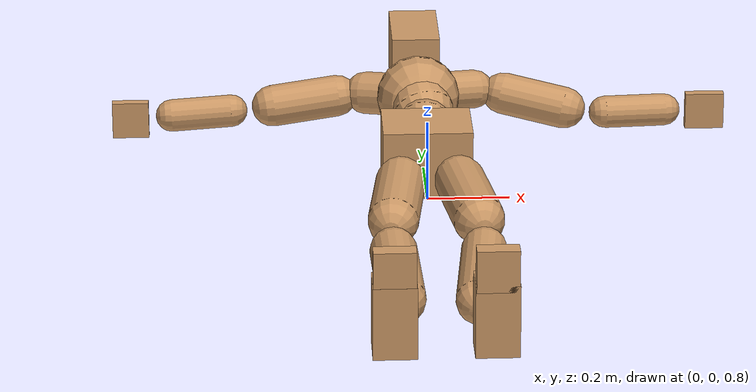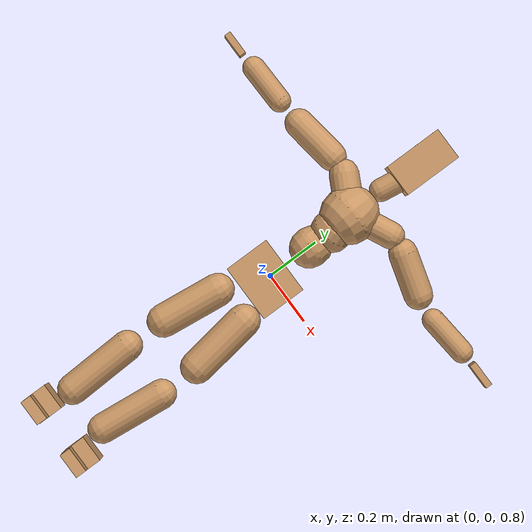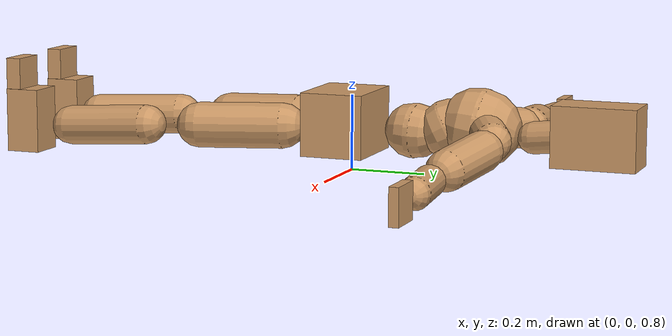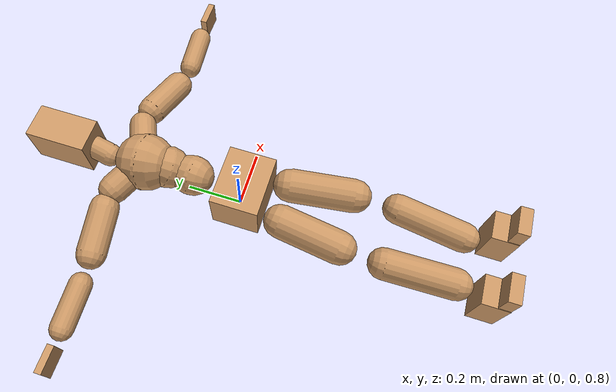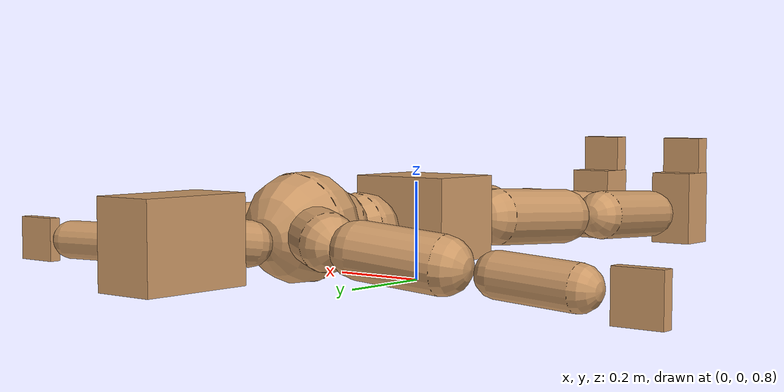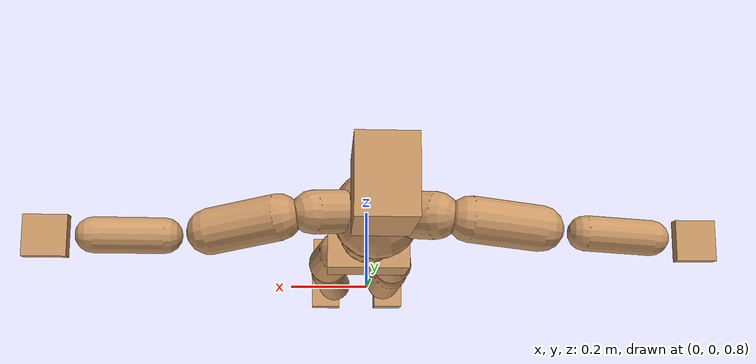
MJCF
<mujoco model="humanoid">
  <compiler coordinate="local"/>
  <default>
    <joint damping="0.0" armature="0.01" stiffness="0.0" limited="true"/>
    <geom conaffinity="1" condim="3" contype="7" margin="0.001" rgba="0.8 0.6 .4 1"/>
  </default>
  <worldbody>
    <light cutoff="100" diffuse="1 1 1" dir="-0 0 -1.3" directional="true" exponent="1" pos="0 0 1.3" specular=".1 .1 .1"/>
    <camera name="back" pos="0 3 1.4" xyaxes="-1 0 0 0 -1 2" mode="trackcom"/>
    <camera name="side" pos="-3 0 1.4" xyaxes="0 -1 0 1 0 2" mode="trackcom"/>
    <camera name="front_side" pos="-2 -2 0.5" xyaxes="0.5 -0.5 0 0.1 0.1 1"  mode="trackcom"/>
    <body name="Pelvis" pos="0 0 0.946" quat="1 0 0 0">
      <geom type="box" pos="-0.0031 -0.0215 -0.0168" size="0.1079 0.0846 0.084" quat="1.0000 0.0000 0.0000 0.0000" density="3021.964159" name="Pelvis"/>
      <body name="L_Hip" pos="0.0582 -0.0928 -0.026">
        <joint name="L_Hip_x" type="hinge" pos="0 0 0" axis="1 0 0" user="250 2.5 1 500 10 2" armature="0.01" range="-180.0000 180.0000" damping="0" stiffness="0"/>
        <joint name="L_Hip_y" type="hinge" pos="0 0 0" axis="0 1 0" user="250 2.5 1 500 10 2" armature="0.01" range="-180.0000 180.0000" damping="0" stiffness="0"/>
        <joint name="L_Hip_z" type="hinge" pos="0 0 0" axis="0 0 1" user="250 2.5 1 500 10 2" armature="0.01" range="-180.0000 180.0000" damping="0" stiffness="0"/>
        <geom type="capsule" contype="1" conaffinity="1" density="2040.816327" fromto="0.0109 -0.0758 -0.0019 0.0438 -0.3030 -0.0075" size="0.0605" name="L_Hip"/>
        <body name="L_Knee" pos="0.0547 -0.3788 -0.0094">
          <joint name="L_Knee_x" type="hinge" pos="0 0 0" axis="1 0 0" user="250 2.5 1 500 10 2" armature="0.01" range="-180.0000 180.0000" damping="0" stiffness="0"/>
          <joint name="L_Knee_y" type="hinge" pos="0 0 0" axis="0 1 0" user="250 2.5 1 500 10 2" armature="0.01" range="-180.0000 180.0000" damping="0" stiffness="0"/>
          <joint name="L_Knee_z" type="hinge" pos="0 0 0" axis="0 0 1" user="250 2.5 1 500 10 2" armature="0.01" range="-180.0000 180.0000" damping="0" stiffness="0"/>
          <geom type="capsule" contype="1" conaffinity="1" density="1234.567901" fromto="-0.0087 -0.0806 -0.0064 -0.0348 -0.3224 -0.0255" size="0.0533" name="L_Knee"/>
          <body name="L_Ankle" pos="-0.0435 -0.4031 -0.0319">
            <joint name="L_Ankle_x" type="hinge" pos="0 0 0" axis="1 0 0" user="150 2.5 1 500 10 2" armature="0.01" range="-180.0000 180.0000" damping="0" stiffness="0"/>
            <joint name="L_Ankle_y" type="hinge" pos="0 0 0" axis="0 1 0" user="150 2.5 1 500 10 2" armature="0.01" range="-180.0000 180.0000" damping="0" stiffness="0"/>
            <joint name="L_Ankle_z" type="hinge" pos="0 0 0" axis="0 0 1" user="150 2.5 1 500 10 2" armature="0.01" range="-180.0000 180.0000" damping="0" stiffness="0"/>
            <geom type="box" pos="0.0407 -0.0287 0.0232" size="0.0498 0.0464 0.0857" quat="1.0000 0.0000 0.0000 0.0000" density="445.819015" name="L_Ankle"/>
            <body name="L_Toe" pos="0.0473 -0.058 0.1182">
              <joint name="L_Toe_y" type="hinge" pos="0 0 0" axis="0 1 0" user="150 1 1 500 1 1" armature="0.01" range="-180.0000 180.0000" damping="0" stiffness="0"/>
              <geom type="box" pos="-0.0065 0.0034 0.0256" size="0.0478 0.0205 0.0495" quat="1.0000 0.0000 0.0000 0.0000" density="421.767577" name="L_Toe"/>
            </body>
          </body>
        </body>
      </body>
      <body name="R_Hip" pos="-0.0633 -0.1039 -0.0213">
        <joint name="R_Hip_x" type="hinge" pos="0 0 0" axis="1 0 0" user="250 2.5 1 500 10 2" armature="0.01" range="-180.0000 180.0000" damping="0" stiffness="0"/>
        <joint name="R_Hip_y" type="hinge" pos="0 0 0" axis="0 1 0" user="250 2.5 1 500 10 2" armature="0.01" range="-180.0000 180.0000" damping="0" stiffness="0"/>
        <joint name="R_Hip_z" type="hinge" pos="0 0 0" axis="0 0 1" user="250 2.5 1 500 10 2" armature="0.01" range="-180.0000 180.0000" damping="0" stiffness="0"/>
        <geom type="capsule" contype="1" conaffinity="1" density="2040.816327" fromto="-0.0088 -0.0725 -0.0034 -0.0354 -0.2899 -0.0135" size="0.0598" name="R_Hip"/>
        <body name="R_Knee" pos="-0.0442 -0.3624 -0.0168">
          <joint name="R_Knee_x" type="hinge" pos="0 0 0" axis="1 0 0" user="250 2.5 1 500 10 2" armature="0.01" range="-180.0000 180.0000" damping="0" stiffness="0"/>
          <joint name="R_Knee_y" type="hinge" pos="0 0 0" axis="0 1 0" user="250 2.5 1 500 10 2" armature="0.01" range="-180.0000 180.0000" damping="0" stiffness="0"/>
          <joint name="R_Knee_z" type="hinge" pos="0 0 0" axis="0 0 1" user="250 2.5 1 500 10 2" armature="0.01" range="-180.0000 180.0000" damping="0" stiffness="0"/>
          <geom type="capsule" contype="1" conaffinity="1" density="1234.567901" fromto="0.0031 -0.0821 -0.0040 0.0123 -0.3286 -0.0162" size="0.0551" name="R_Knee"/>
          <body name="R_Ankle" pos="0.0154 -0.4107 -0.0202">
            <joint name="R_Ankle_x" type="hinge" pos="0 0 0" axis="1 0 0" user="150 1 1 500 10 2" armature="0.01" range="-180.0000 180.0000" damping="0" stiffness="0"/>
            <joint name="R_Ankle_y" type="hinge" pos="0 0 0" axis="0 1 0" user="150 1 1 500 10 2" armature="0.01" range="-180.0000 180.0000" damping="0" stiffness="0"/>
            <joint name="R_Ankle_z" type="hinge" pos="0 0 0" axis="0 0 1" user="150 1 1 500 10 2" armature="0.01" range="-180.0000 180.0000" damping="0" stiffness="0"/>
            <geom type="box" pos="-0.0243 -0.0263 0.0142" size="0.0498 0.0464 0.0857" quat="1.0000 0.0000 0.0000 0.0000" density="445.807856" name="R_Ankle"/>
            <body name="R_Toe" pos="-0.0388 -0.0583 0.119">
              <joint name="R_Toe_y" type="hinge" pos="0 0 0" axis="0 1 0" user="150 1 1 500 1 1" armature="0.01" range="-180.0000 180.0000" damping="0" stiffness="0"/>
              <geom type="box" pos="0.0145 0.0062 0.0158" size="0.0478 0.0205 0.0495" quat="1.0000 0.0000 0.0000 0.0000" density="421.7641" name="R_Toe"/>
            </body>
          </body>
        </body>
      </body>
      <body name="Torso" pos="-0.0028 0.1099 -0.0276">
        <joint name="Torso_x" type="hinge" pos="0 0 0" axis="1 0 0" user="500 5 1 500 10 2" armature="0.01" range="-180.0000 180.0000" damping="0" stiffness="0"/>
        <joint name="Torso_y" type="hinge" pos="0 0 0" axis="0 1 0" user="500 5 1 500 10 2" armature="0.01" range="-180.0000 180.0000" damping="0" stiffness="0"/>
        <joint name="Torso_z" type="hinge" pos="0 0 0" axis="0 0 1" user="500 5 1 500 10 2" armature="0.01" range="-180.0000 180.0000" damping="0" stiffness="0"/>
        <geom type="capsule" contype="1" conaffinity="1" density="2040.816327" fromto="0.0043 0.0593 -0.0027 0.0052 0.0725 -0.0033" size="0.0719" name="Torso"/>
        <body name="Spine" pos="0.0094 0.1319 -0.0059">
          <joint name="Spine_x" type="hinge" pos="0 0 0" axis="1 0 0" user="500 5 1 500 10 2" armature="0.01" range="-180.0000 180.0000" damping="0" stiffness="0"/>
          <joint name="Spine_y" type="hinge" pos="0 0 0" axis="0 1 0" user="500 5 1 500 10 2" armature="0.01" range="-180.0000 180.0000" damping="0" stiffness="0"/>
          <joint name="Spine_z" type="hinge" pos="0 0 0" axis="0 0 1" user="500 5 1 500 10 2" armature="0.01" range="-180.0000 180.0000" damping="0" stiffness="0"/>
          <geom type="capsule" contype="1" conaffinity="1" density="2040.816327" fromto="-0.0051 0.0235 0.0128 -0.0062 0.0287 0.0156" size="0.076" name="Spine"/>
          <body name="Chest" pos="-0.0113 0.0522 0.0284">
            <joint name="Chest_x" type="hinge" pos="0 0 0" axis="1 0 0" user="500 5 1 500 10 2" armature="0.01" range="-180.0000 180.0000" damping="0" stiffness="0"/>
            <joint name="Chest_y" type="hinge" pos="0 0 0" axis="0 1 0" user="500 5 1 500 10 2" armature="0.01" range="-180.0000 180.0000" damping="0" stiffness="0"/>
            <joint name="Chest_z" type="hinge" pos="0 0 0" axis="0 0 1" user="500 5 1 500 10 2" armature="0.01" range="-180.0000 180.0000" damping="0" stiffness="0"/>
            <geom type="capsule" contype="1" conaffinity="1" density="2040.816327" fromto="-0.0020 0.0502 -0.0078 -0.0025 0.0613 -0.0096" size="0.1028" name="Chest"/>
            <body name="Neck" pos="-0.0122 0.1652 -0.0316">
              <joint name="Neck_y" type="hinge" pos="0 0 0" axis="0 1 0" user="150 1 1 250 50 4" armature="0.01" range="-180.0000 180.0000" damping="0" stiffness="0"/>
              <joint name="Neck_z" type="hinge" pos="0 0 0" axis="0 0 1" user="150 1 1 250 50 4" armature="0.01" range="-180.0000 180.0000" damping="0" stiffness="0"/>
              <geom type="capsule" contype="1" conaffinity="1" density="1000" fromto="0.0050 0.0321 0.0041 0.0198 0.1284 0.0166" size="0.0419" name="Neck"/>
              <body name="Head" pos="0.0248 0.1605 0.0207">
                <camera name="egocentric" pos="0 0 0.09" xyaxes="+1 0 0 0 -1 -0.1" fovy="80"/>
                <geom type="box" pos="-0.0111 0.0414 -0.0008" size="0.0609 0.1096 0.0797" quat="1.0000 0.0000 0.0000 0.0000" density="1018.531753" name="Head"/>
              </body>
            </body>
            <body name="L_Thorax" pos="0.0464 0.0849 -0.0072">
              <joint name="L_Thorax_x" type="hinge" pos="0 0 0" axis="1 0 0" user="200 2 1 500 50 4" armature="0.01" range="-180.0000 180.0000" damping="0" stiffness="0"/>
              <joint name="L_Thorax_z" type="hinge" pos="0 0 0" axis="0 0 1" user="200 2 1 500 50 4" armature="0.01" range="-180.0000 180.0000" damping="0" stiffness="0"/>
              <geom type="capsule" contype="1" conaffinity="1" density="1000" fromto="0.0238 0.0115 -0.0031 0.0954 0.0462 -0.0124" size="0.0488" name="L_Thorax"/>
              <body name="L_Shoulder" pos="0.1192 0.0577 -0.0155">
                <joint name="L_Shoulder_x" type="hinge" pos="0 0 0" axis="1 0 0" user="200 2 1 500 50 4" armature="0.01" range="-180.0000 180.0000" damping="0" stiffness="0"/>
                <joint name="L_Shoulder_y" type="hinge" pos="0 0 0" axis="0 1 0" user="200 2 1 500 50 4" armature="0.01" range="-180.0000 180.0000" damping="0" stiffness="0"/>
                <joint name="L_Shoulder_z" type="hinge" pos="0 0 0" axis="0 0 1" user="200 2 1 500 50 4" armature="0.01" range="-180.0000 180.0000" damping="0" stiffness="0"/>
                <geom type="capsule" contype="1" conaffinity="1" density="1000" fromto="0.0508 -0.0144 -0.0085 0.2033 -0.0577 -0.0340" size="0.0522" name="L_Shoulder"/>
                <body name="L_Elbow" pos="0.2541 -0.0722 -0.0425">
                  <joint name="L_Elbow_z" type="hinge" pos="0 0 0" axis="0 0 1" user="150 1 1 150 10 2" armature="0.01" range="-180.0000 180.0000" damping="0" stiffness="0"/>
                  <geom type="capsule" contype="1" conaffinity="1" density="1000" fromto="0.0504 0.0046 -0.0005 0.2016 0.0186 -0.0020" size="0.0401" name="L_Elbow"/>
                  <body name="L_Wrist" pos="0.252 0.0232 -0.0025">
                    <joint name="L_Wrist_x" type="hinge" pos="0 0 0" axis="1 0 0" user="100 1 1 150 1 1" armature="0.01" range="-180.0000 180.0000" damping="0" stiffness="0"/>
                    <joint name="L_Wrist_z" type="hinge" pos="0 0 0" axis="0 0 1" user="100 1 1 150 1 1" armature="0.01" range="-180.0000 180.0000" damping="0" stiffness="0"/>
                    <geom type="box" pos="0.0523 -0.0013 -0.0031" size="0.0484 0.0122 0.046" quat="1.0000 0.0000 0.0000 0.0000" density="1198.335963" name="L_Wrist"/>
                  </body>
                </body>
              </body>
            </body>
            <body name="R_Thorax" pos="-0.0477 0.0843 -0.0134">
              <joint name="R_Thorax_x" type="hinge" pos="0 0 0" axis="1 0 0" user="200 2 1 150 10 2" armature="0.01" range="-180.0000 180.0000" damping="0" stiffness="0"/>
              <joint name="R_Thorax_z" type="hinge" pos="0 0 0" axis="0 0 1" user="200 2 1 150 10 2" armature="0.01" range="-180.0000 180.0000" damping="0" stiffness="0"/>
              <geom type="capsule" contype="1" conaffinity="1" density="1000" fromto="-0.0205 0.0107 -0.0025 -0.0821 0.0428 -0.0101" size="0.0536" name="R_Thorax"/>
              <body name="R_Shoulder" pos="-0.1026 0.0535 -0.0127">
                <joint name="R_Shoulder_x" type="hinge" pos="0 0 0" axis="1 0 0" user="200 2 1 250 10 2" armature="0.01" range="-180.0000 180.0000" damping="0" stiffness="0"/>
                <joint name="R_Shoulder_y" type="hinge" pos="0 0 0" axis="0 1 0" user="200 2 1 250 10 2" armature="0.01" range="-180.0000 180.0000" damping="0" stiffness="0"/>
                <joint name="R_Shoulder_z" type="hinge" pos="0 0 0" axis="0 0 1" user="200 2 1 250 10 2" armature="0.01" range="-180.0000 180.0000" damping="0" stiffness="0"/>
                <geom type="capsule" contype="1" conaffinity="1" density="1000" fromto="-0.0542 -0.0073 -0.0053 -0.2169 -0.0292 -0.0212" size="0.0521" name="R_Shoulder"/>
                <body name="R_Elbow" pos="-0.2711 -0.0365 -0.0265">
                  <joint name="R_Elbow_z" type="hinge" pos="0 0 0" axis="0 0 1" user="150 1 1 150 10 2" armature="0.01" range="-180.0000 180.0000" damping="0" stiffness="0"/>
                  <geom type="capsule" contype="1" conaffinity="1" density="1000" fromto="-0.0499 -0.0009 -0.0031 -0.1994 -0.0036 -0.0123" size="0.0404" name="R_Elbow"/>
                  <body name="R_Wrist" pos="-0.2493 -0.0045 -0.0153">
                    <joint name="R_Wrist_x" type="hinge" pos="0 0 0" axis="1 0 0" user="100 1 1 150 1 1" armature="0.01" range="-180.0000 180.0000" damping="0" stiffness="0"/>
                    <joint name="R_Wrist_z" type="hinge" pos="0 0 0" axis="0 0 1" user="100 1 1 150 1 1" armature="0.01" range="-180.0000 180.0000" damping="0" stiffness="0"/>
                    <geom type="box" pos="-0.0537 -0.0044 -0.0029" size="0.0454 0.0122 0.046" quat="1.0000 0.0000 0.0000 0.0000" density="1230.822844" name="R_Wrist"/>
                  </body>
                </body>
              </body>
            </body>
          </body>
        </body>
      </body>
    </body>
  </worldbody>
  <actuator>
    <motor name="L_Hip_x" joint="L_Hip_x" gear="1"/>
    <motor name="L_Hip_y" joint="L_Hip_y" gear="1"/>
    <motor name="L_Hip_z" joint="L_Hip_z" gear="1"/>
    <motor name="L_Knee_x" joint="L_Knee_x" gear="1"/>
    <motor name="L_Knee_y" joint="L_Knee_y" gear="1"/>
    <motor name="L_Knee_z" joint="L_Knee_z" gear="1"/>
    <motor name="L_Ankle_x" joint="L_Ankle_x" gear="1"/>
    <motor name="L_Ankle_y" joint="L_Ankle_y" gear="1"/>
    <motor name="L_Ankle_z" joint="L_Ankle_z" gear="1"/>
    <motor name="L_Toe_y" joint="L_Toe_y" gear="1"/>
    <motor name="R_Hip_x" joint="R_Hip_x" gear="1"/>
    <motor name="R_Hip_y" joint="R_Hip_y" gear="1"/>
    <motor name="R_Hip_z" joint="R_Hip_z" gear="1"/>
    <motor name="R_Knee_x" joint="R_Knee_x" gear="1"/>
    <motor name="R_Knee_y" joint="R_Knee_y" gear="1"/>
    <motor name="R_Knee_z" joint="R_Knee_z" gear="1"/>
    <motor name="R_Ankle_x" joint="R_Ankle_x" gear="1"/>
    <motor name="R_Ankle_y" joint="R_Ankle_y" gear="1"/>
    <motor name="R_Ankle_z" joint="R_Ankle_z" gear="1"/>
    <motor name="R_Toe_y" joint="R_Toe_y" gear="1"/>
    <motor name="Torso_x" joint="Torso_x" gear="1"/>
    <motor name="Torso_y" joint="Torso_y" gear="1"/>
    <motor name="Torso_z" joint="Torso_z" gear="1"/>
    <motor name="Spine_x" joint="Spine_x" gear="1"/>
    <motor name="Spine_y" joint="Spine_y" gear="1"/>
    <motor name="Spine_z" joint="Spine_z" gear="1"/>
    <motor name="Chest_x" joint="Chest_x" gear="1"/>
    <motor name="Chest_y" joint="Chest_y" gear="1"/>
    <motor name="Chest_z" joint="Chest_z" gear="1"/>
    <motor name="Neck_y" joint="Neck_y" gear="1"/>
    <motor name="Neck_z" joint="Neck_z" gear="1"/>
    <motor name="L_Thorax_x" joint="L_Thorax_x" gear="1"/>
    <motor name="L_Thorax_z" joint="L_Thorax_z" gear="1"/>
    <motor name="L_Shoulder_x" joint="L_Shoulder_x" gear="1"/>
    <motor name="L_Shoulder_y" joint="L_Shoulder_y" gear="1"/>
    <motor name="L_Shoulder_z" joint="L_Shoulder_z" gear="1"/>
    <motor name="L_Elbow_z" joint="L_Elbow_z" gear="1"/>
    <motor name="L_Wrist_x" joint="L_Wrist_x" gear="1"/>
    <motor name="L_Wrist_z" joint="L_Wrist_z" gear="1"/>
    <motor name="R_Thorax_x" joint="R_Thorax_x" gear="1"/>
    <motor name="R_Thorax_z" joint="R_Thorax_z" gear="1"/>
    <motor name="R_Shoulder_x" joint="R_Shoulder_x" gear="1"/>
    <motor name="R_Shoulder_y" joint="R_Shoulder_y" gear="1"/>
    <motor name="R_Shoulder_z" joint="R_Shoulder_z" gear="1"/>
    <motor name="R_Elbow_z" joint="R_Elbow_z" gear="1"/>
    <motor name="R_Wrist_x" joint="R_Wrist_x" gear="1"/>
    <motor name="R_Wrist_z" joint="R_Wrist_z" gear="1"/>
  </actuator>
  <contact>
    <exclude body1="Torso" body2="Spine"/>
    <exclude body1="Torso" body2="Chest"/>
    <exclude body1="Torso" body2="Neck"/>
    <exclude body1="Torso" body2="Head"/>
    <exclude body1="Chest" body2="Neck"/>
    <exclude body1="Chest" body2="Head"/>
    <exclude body1="Head" body2="Chest"/>
    <exclude body1="R_Knee" body2="R_Toe"/>
    <exclude body1="R_Knee" body2="L_Ankle"/>
    <exclude body1="R_Knee" body2="L_Toe"/>
    <exclude body1="L_Knee" body2="L_Toe"/>
    <exclude body1="L_Knee" body2="R_Ankle"/>
    <exclude body1="L_Knee" body2="R_Toe"/>
    <exclude body1="L_Shoulder" body2="Chest"/>
    <exclude body1="R_Shoulder" body2="Chest"/>
  </contact>
</mujoco>
